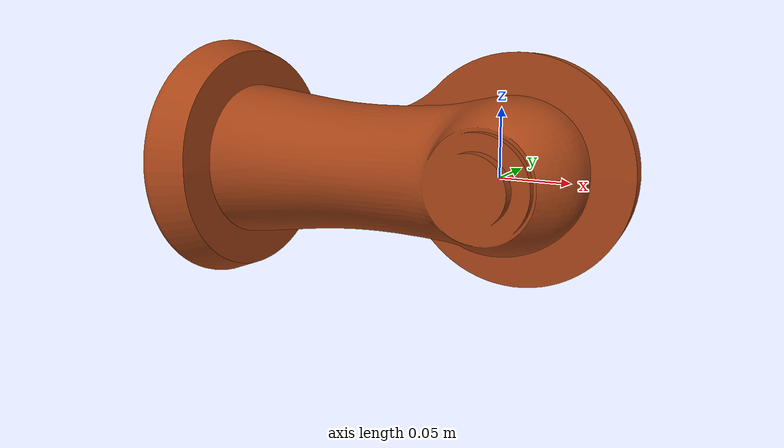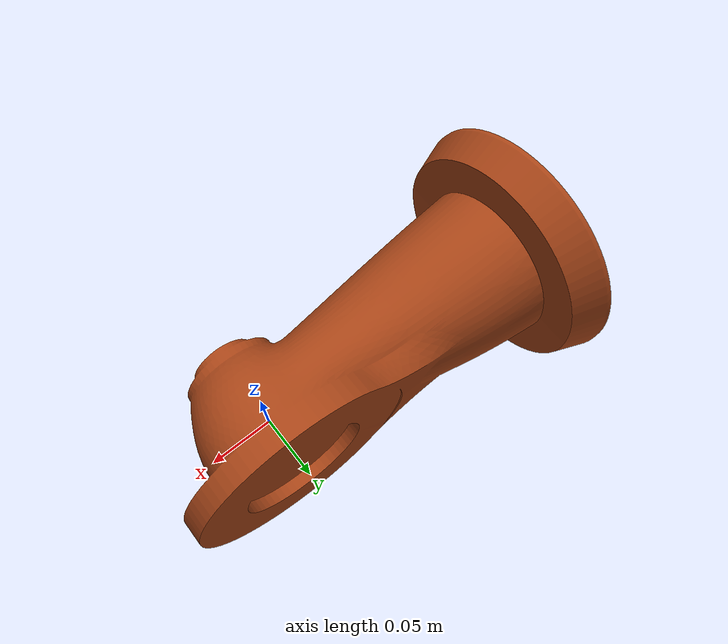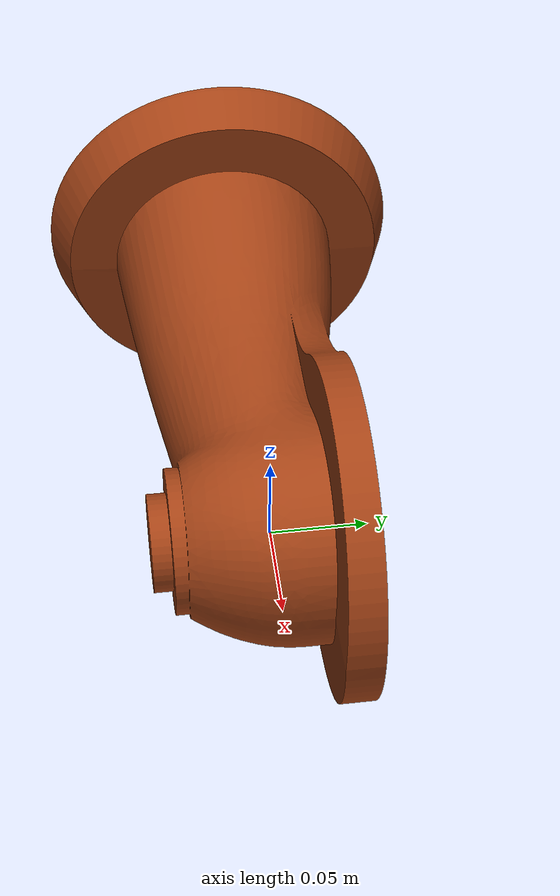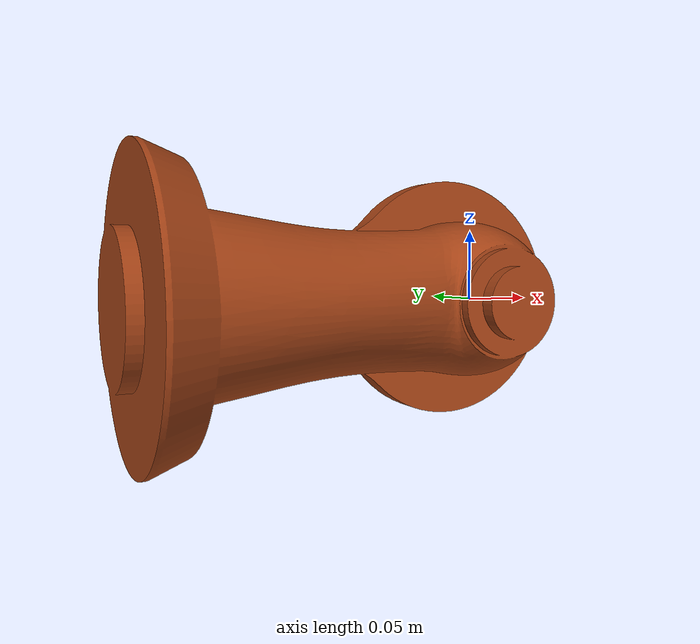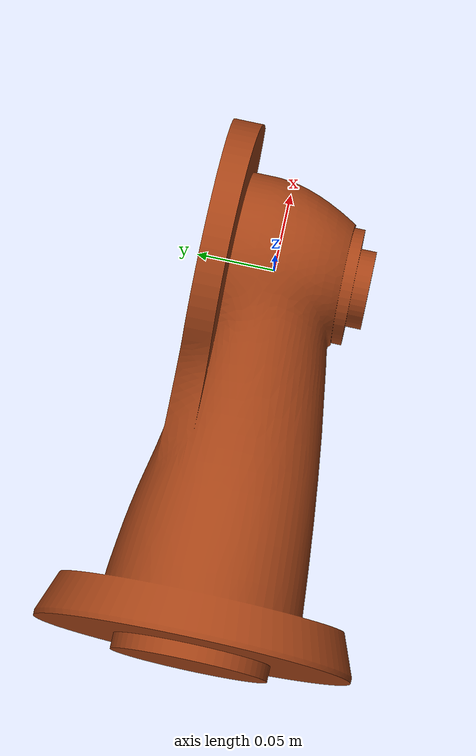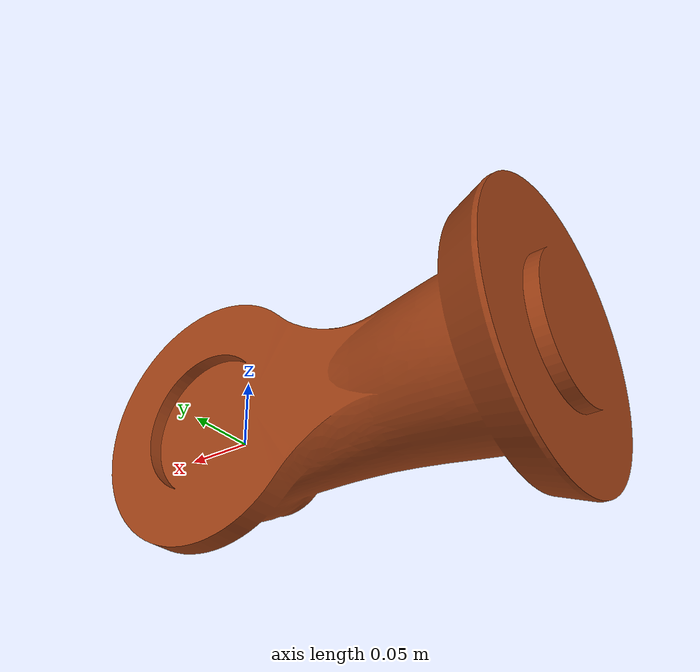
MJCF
<mujoco model="link_4">
  <default>
    <default class="visual">
      <geom group="2" type="mesh" contype="0" conaffinity="0"/>
    </default>
    <default class="collision">
      <geom group="3" type="mesh"/>
    </default>
  </default>
  <asset>
    <material name="RAL2003.001" specular="0.5" shininess="0.25" rgba="0.640000 0.261018 0.087840 1.000000"/>
    <mesh file="link_4.obj"/>
  </asset>
  <worldbody>
    <body name="link_4">
      <geom material="RAL2003.001" mesh="link_4" class="visual"/>
      <geom mesh="link_4" class="collision"/>
    </body>
  </worldbody>
</mujoco>
